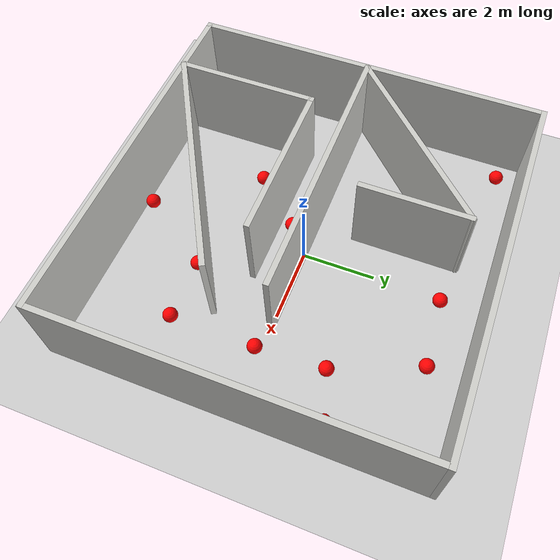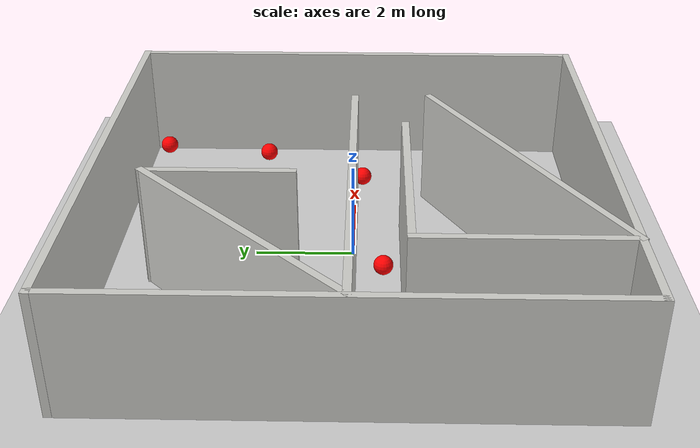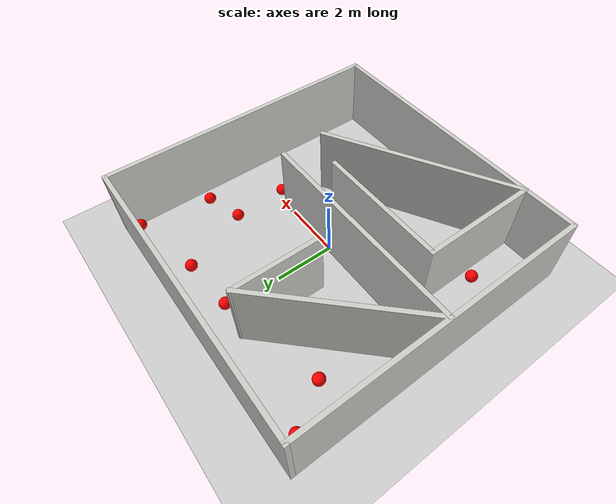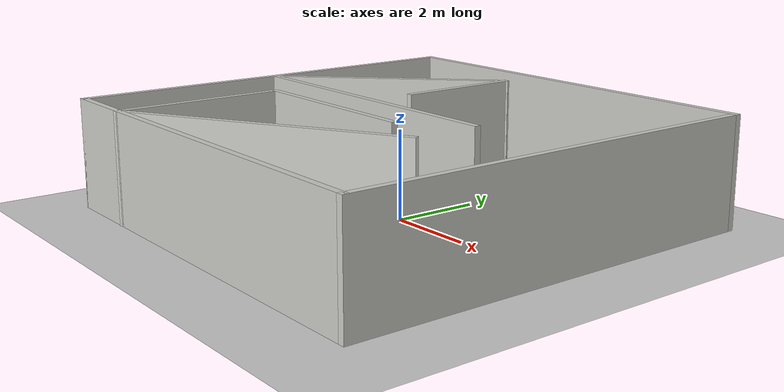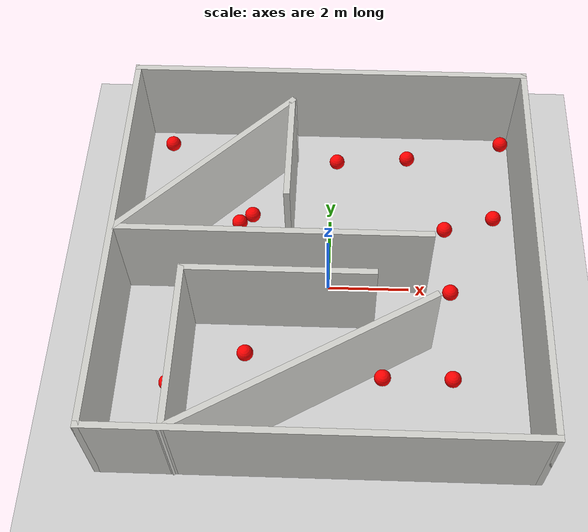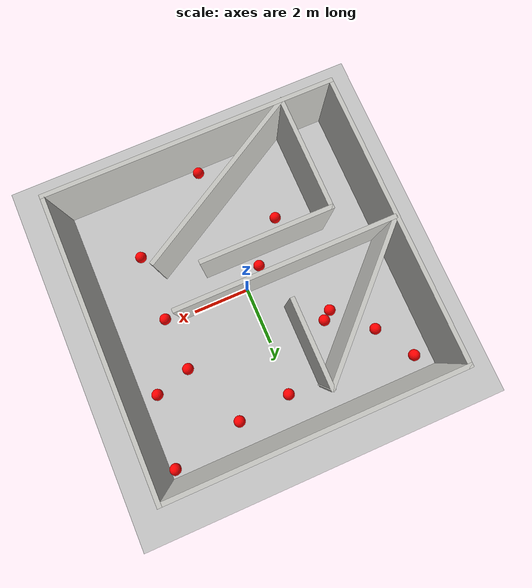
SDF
<sdf version="1.6">
 <world name="default">
  <light name="sun" type="directional">
   <pose>0 0 10 0 -0 0</pose>
   <diffuse>0.8 0.8 0.8 1</diffuse>
   <specular>0.1 0.1 0.1 1</specular>
   <attenuation>
    <range>1000</range>
    <constant>0.9</constant>
    <linear>0.01</linear>
    <quadratic>0.001</quadratic>
   </attenuation>
   <direction>-0.5 0.5 -1</direction>
  </light>
  <model name="ground_plane">
   <static>1</static>
   <link name="link">
    <collision name="collision">
     <geometry><plane><normal>0 0 1</normal><size>100 100</size></plane></geometry>
     <surface><friction><ode><mu>100</mu><mu2>50</mu2></ode></friction></surface>
    </collision>
    <visual name="visual">
     <cast_shadows>0</cast_shadows>
     <geometry><plane><normal>0 0 1</normal><size>100 100</size></plane></geometry>
     <material>
      <script><uri>file://media/materials/scripts/gazebo.material</uri><name>Gazebo/Grey</name></script>
     </material>
    </visual>
   </link>
  </model>
  <gravity>0 0 -9.8</gravity>
  <magnetic_field>6e-06 2.3e-05 -4.2e-05</magnetic_field>
  <atmosphere type="adiabatic"/>
  <physics name="default_physics" default="0" type="ode">
   <max_step_size>0.001</max_step_size>
   <real_time_factor>1</real_time_factor>
   <real_time_update_rate>1000</real_time_update_rate>
  </physics>
  <scene><ambient>0.4 0.4 0.4 1</ambient><background>0.7 0.7 0.7 1</background><shadows>1</shadows></scene>
  <spherical_coordinates>
   <surface_model>EARTH_WGS84</surface_model>
   <latitude_deg>0</latitude_deg>
   <longitude_deg>0</longitude_deg>
   <elevation>0</elevation>
   <heading_deg>0</heading_deg>
  </spherical_coordinates>
  <model name="redball">
   <link name="link">
    <pose>0 0 0.2 0 -0 0</pose>
    <inertial>
     <mass>1</mass>
     <inertia><ixx>0.1</ixx><ixy>0</ixy><ixz>0</ixz><iyy>0.1</iyy><iyz>0</iyz><izz>0.1</izz></inertia>
    </inertial>
    <visual name="visual">
     <geometry><sphere><radius>0.2</radius></sphere></geometry>
     <material>
      <script><name>Gazebo/Grey</name><uri>file://media/materials/scripts/gazebo.material</uri></script>
      <ambient>1 0 0 1</ambient>
      <diffuse>1 0 0 1</diffuse>
      <specular>1 0 0 1</specular>
      <emissive>0 0 0 1</emissive>
      <shader type="vertex"><normal_map>__default__</normal_map></shader>
     </material>
    </visual>
    <collision name="collision">
     <geometry><sphere><radius>0.2</radius></sphere></geometry>
     <surface>
      <friction>
       <ode><mu>1</mu><mu2>1</mu2><fdir1>0 0 0</fdir1><slip1>0</slip1><slip2>0</slip2></ode>
       <torsional>
        <coefficient>1</coefficient>
        <patch_radius>0</patch_radius>
        <surface_radius>0</surface_radius>
        <use_patch_radius>1</use_patch_radius>
        <ode><slip>0</slip></ode>
       </torsional>
      </friction>
      <bounce><restitution_coefficient>0</restitution_coefficient><threshold>1e+06</threshold></bounce>
      <contact>
       <collide_without_contact>0</collide_without_contact>
       <collide_without_contact_bitmask>1</collide_without_contact_bitmask>
       <collide_bitmask>1</collide_bitmask>
       <ode>
        <soft_cfm>0</soft_cfm>
        <soft_erp>0.2</soft_erp>
        <kp>1e+13</kp>
        <kd>1</kd>
        <max_vel>0.01</max_vel>
        <min_depth>0</min_depth>
       </ode>
       <bullet>
        <split_impulse>1</split_impulse>
        <split_impulse_penetration_threshold>-0.01</split_impulse_penetration_threshold>
        <soft_cfm>0</soft_cfm>
        <soft_erp>0.2</soft_erp>
        <kp>1e+13</kp>
        <kd>1</kd>
       </bullet>
      </contact>
     </surface>
    </collision>
   </link>
   <static>0</static>
   <pose>4.553 4.57885 0.000107 1e-06 -0.032773 0</pose>
  </model>
  <model name="redball_0">
   <link name="link">
    <pose>0 0 0.2 0 -0 0</pose>
    <inertial>
     <mass>1</mass>
     <inertia><ixx>0.1</ixx><ixy>0</ixy><ixz>0</ixz><iyy>0.1</iyy><iyz>0</iyz><izz>0.1</izz></inertia>
    </inertial>
    <visual name="visual">
     <geometry><sphere><radius>0.2</radius></sphere></geometry>
     <material>
      <script><name>Gazebo/Grey</name><uri>file://media/materials/scripts/gazebo.material</uri></script>
      <ambient>1 0 0 1</ambient>
      <diffuse>1 0 0 1</diffuse>
      <specular>1 0 0 1</specular>
      <emissive>0 0 0 1</emissive>
      <shader type="vertex"><normal_map>__default__</normal_map></shader>
     </material>
    </visual>
    <collision name="collision">
     <geometry><sphere><radius>0.2</radius></sphere></geometry>
     <surface>
      <friction>
       <ode><mu>1</mu><mu2>1</mu2><fdir1>0 0 0</fdir1><slip1>0</slip1><slip2>0</slip2></ode>
       <torsional>
        <coefficient>1</coefficient>
        <patch_radius>0</patch_radius>
        <surface_radius>0</surface_radius>
        <use_patch_radius>1</use_patch_radius>
        <ode><slip>0</slip></ode>
       </torsional>
      </friction>
      <bounce><restitution_coefficient>0</restitution_coefficient><threshold>1e+06</threshold></bounce>
      <contact>
       <collide_without_contact>0</collide_without_contact>
       <collide_without_contact_bitmask>1</collide_without_contact_bitmask>
       <collide_bitmask>1</collide_bitmask>
       <ode>
        <soft_cfm>0</soft_cfm>
        <soft_erp>0.2</soft_erp>
        <kp>1e+13</kp>
        <kd>1</kd>
        <max_vel>0.01</max_vel>
        <min_depth>0</min_depth>
       </ode>
       <bullet>
        <split_impulse>1</split_impulse>
        <split_impulse_penetration_threshold>-0.01</split_impulse_penetration_threshold>
        <soft_cfm>0</soft_cfm>
        <soft_erp>0.2</soft_erp>
        <kp>1e+13</kp>
        <kd>1</kd>
       </bullet>
      </contact>
     </surface>
    </collision>
   </link>
   <static>0</static>
   <pose>-0.044672 -4.61825 7.4e-05 -0.02714 0 0</pose>
  </model>
  <model name="redball_1">
   <link name="link">
    <pose>0 0 0.2 0 -0 0</pose>
    <inertial>
     <mass>1</mass>
     <inertia><ixx>0.1</ixx><ixy>0</ixy><ixz>0</ixz><iyy>0.1</iyy><iyz>0</iyz><izz>0.1</izz></inertia>
    </inertial>
    <visual name="visual">
     <geometry><sphere><radius>0.2</radius></sphere></geometry>
     <material>
      <script><name>Gazebo/Grey</name><uri>file://media/materials/scripts/gazebo.material</uri></script>
      <ambient>1 0 0 1</ambient>
      <diffuse>1 0 0 1</diffuse>
      <specular>1 0 0 1</specular>
      <emissive>0 0 0 1</emissive>
      <shader type="vertex"><normal_map>__default__</normal_map></shader>
     </material>
    </visual>
    <collision name="collision">
     <geometry><sphere><radius>0.2</radius></sphere></geometry>
     <surface>
      <friction>
       <ode><mu>1</mu><mu2>1</mu2><fdir1>0 0 0</fdir1><slip1>0</slip1><slip2>0</slip2></ode>
       <torsional>
        <coefficient>1</coefficient>
        <patch_radius>0</patch_radius>
        <surface_radius>0</surface_radius>
        <use_patch_radius>1</use_patch_radius>
        <ode><slip>0</slip></ode>
       </torsional>
      </friction>
      <bounce><restitution_coefficient>0</restitution_coefficient><threshold>1e+06</threshold></bounce>
      <contact>
       <collide_without_contact>0</collide_without_contact>
       <collide_without_contact_bitmask>1</collide_without_contact_bitmask>
       <collide_bitmask>1</collide_bitmask>
       <ode>
        <soft_cfm>0</soft_cfm>
        <soft_erp>0.2</soft_erp>
        <kp>1e+13</kp>
        <kd>1</kd>
        <max_vel>0.01</max_vel>
        <min_depth>0</min_depth>
       </ode>
       <bullet>
        <split_impulse>1</split_impulse>
        <split_impulse_penetration_threshold>-0.01</split_impulse_penetration_threshold>
        <soft_cfm>0</soft_cfm>
        <soft_erp>0.2</soft_erp>
        <kp>1e+13</kp>
        <kd>1</kd>
       </bullet>
      </contact>
     </surface>
    </collision>
   </link>
   <static>0</static>
   <pose>-2.01921 2.03663 0 0 -0 0</pose>
  </model>
  <model name="redball_2">
   <link name="link">
    <pose>0 0 0.2 0 -0 0</pose>
    <inertial>
     <mass>1</mass>
     <inertia><ixx>0.1</ixx><ixy>0</ixy><ixz>0</ixz><iyy>0.1</iyy><iyz>0</iyz><izz>0.1</izz></inertia>
    </inertial>
    <visual name="visual">
     <geometry><sphere><radius>0.2</radius></sphere></geometry>
     <material>
      <script><name>Gazebo/Grey</name><uri>file://media/materials/scripts/gazebo.material</uri></script>
      <ambient>1 0 0 1</ambient>
      <diffuse>1 0 0 1</diffuse>
      <specular>1 0 0 1</specular>
      <emissive>0 0 0 1</emissive>
      <shader type="vertex"><normal_map>__default__</normal_map></shader>
     </material>
    </visual>
    <collision name="collision">
     <geometry><sphere><radius>0.2</radius></sphere></geometry>
     <surface>
      <friction>
       <ode><mu>1</mu><mu2>1</mu2><fdir1>0 0 0</fdir1><slip1>0</slip1><slip2>0</slip2></ode>
       <torsional>
        <coefficient>1</coefficient>
        <patch_radius>0</patch_radius>
        <surface_radius>0</surface_radius>
        <use_patch_radius>1</use_patch_radius>
        <ode><slip>0</slip></ode>
       </torsional>
      </friction>
      <bounce><restitution_coefficient>0</restitution_coefficient><threshold>1e+06</threshold></bounce>
      <contact>
       <collide_without_contact>0</collide_without_contact>
       <collide_without_contact_bitmask>1</collide_without_contact_bitmask>
       <collide_bitmask>1</collide_bitmask>
       <ode>
        <soft_cfm>0</soft_cfm>
        <soft_erp>0.2</soft_erp>
        <kp>1e+13</kp>
        <kd>1</kd>
        <max_vel>0.01</max_vel>
        <min_depth>0</min_depth>
       </ode>
       <bullet>
        <split_impulse>1</split_impulse>
        <split_impulse_penetration_threshold>-0.01</split_impulse_penetration_threshold>
        <soft_cfm>0</soft_cfm>
        <soft_erp>0.2</soft_erp>
        <kp>1e+13</kp>
        <kd>1</kd>
       </bullet>
      </contact>
     </surface>
    </collision>
   </link>
   <static>0</static>
   <pose>-2.33531 1.78833 0 0 -0 0</pose>
  </model>
  <model name="redball_3">
   <link name="link">
    <pose>0 0 0.2 0 -0 0</pose>
    <inertial>
     <mass>1</mass>
     <inertia><ixx>0.1</ixx><ixy>0</ixy><ixz>0</ixz><iyy>0.1</iyy><iyz>0</iyz><izz>0.1</izz></inertia>
    </inertial>
    <visual name="visual">
     <geometry><sphere><radius>0.2</radius></sphere></geometry>
     <material>
      <script><name>Gazebo/Grey</name><uri>file://media/materials/scripts/gazebo.material</uri></script>
      <ambient>1 0 0 1</ambient>
      <diffuse>1 0 0 1</diffuse>
      <specular>1 0 0 1</specular>
      <emissive>0 0 0 1</emissive>
      <shader type="vertex"><normal_map>__default__</normal_map></shader>
     </material>
    </visual>
    <collision name="collision">
     <geometry><sphere><radius>0.2</radius></sphere></geometry>
     <surface>
      <friction>
       <ode><mu>1</mu><mu2>1</mu2><fdir1>0 0 0</fdir1><slip1>0</slip1><slip2>0</slip2></ode>
       <torsional>
        <coefficient>1</coefficient>
        <patch_radius>0</patch_radius>
        <surface_radius>0</surface_radius>
        <use_patch_radius>1</use_patch_radius>
        <ode><slip>0</slip></ode>
       </torsional>
      </friction>
      <bounce><restitution_coefficient>0</restitution_coefficient><threshold>1e+06</threshold></bounce>
      <contact>
       <collide_without_contact>0</collide_without_contact>
       <collide_without_contact_bitmask>1</collide_without_contact_bitmask>
       <collide_bitmask>1</collide_bitmask>
       <ode>
        <soft_cfm>0</soft_cfm>
        <soft_erp>0.2</soft_erp>
        <kp>1e+13</kp>
        <kd>1</kd>
        <max_vel>0.01</max_vel>
        <min_depth>0</min_depth>
       </ode>
       <bullet>
        <split_impulse>1</split_impulse>
        <split_impulse_penetration_threshold>-0.01</split_impulse_penetration_threshold>
        <soft_cfm>0</soft_cfm>
        <soft_erp>0.2</soft_erp>
        <kp>1e+13</kp>
        <kd>1</kd>
       </bullet>
      </contact>
     </surface>
    </collision>
   </link>
   <static>0</static>
   <pose>-1.92733 -1.98789 0 0 -0 0</pose>
  </model>
  <model name="4wall">
   <pose>-0.096996 0.031753 0 0 -0 0</pose>
   <link name="Wall_34">
    <collision name="Wall_34_Collision">
     <geometry><box><size>10 0.15 2.5</size></box></geometry>
     <pose>0 0 1.25 0 -0 0</pose>
    </collision>
    <visual name="Wall_34_Visual">
     <pose>0 0 1.25 0 -0 0</pose>
     <geometry><box><size>10 0.15 2.5</size></box></geometry>
     <material>
      <script><uri>file://media/materials/scripts/gazebo.material</uri><name>Gazebo/CeilingTiled</name></script>
      <ambient>1 1 1 1</ambient>
     </material>
     <meta><layer>0</layer></meta>
    </visual>
    <pose>0 4.925 0 0 -0 3.14159</pose>
   </link>
   <link name="Wall_36">
    <collision name="Wall_36_Collision">
     <geometry><box><size>10 0.15 2.5</size></box></geometry>
     <pose>0 0 1.25 0 -0 0</pose>
    </collision>
    <visual name="Wall_36_Visual">
     <pose>0 0 1.25 0 -0 0</pose>
     <geometry><box><size>10 0.15 2.5</size></box></geometry>
     <material>
      <script><uri>file://media/materials/scripts/gazebo.material</uri><name>Gazebo/CeilingTiled</name></script>
      <ambient>1 1 1 1</ambient>
     </material>
     <meta><layer>0</layer></meta>
    </visual>
    <pose>-4.925 0 0 0 0 -1.5708</pose>
   </link>
   <link name="Wall_37">
    <collision name="Wall_37_Collision">
     <geometry><box><size>10 0.15 2.5</size></box></geometry>
     <pose>0 0 1.25 0 -0 0</pose>
    </collision>
    <visual name="Wall_37_Visual">
     <pose>0 0 1.25 0 -0 0</pose>
     <geometry><box><size>10 0.15 2.5</size></box></geometry>
     <material>
      <script><uri>file://media/materials/scripts/gazebo.material</uri><name>Gazebo/CeilingTiled</name></script>
      <ambient>1 1 1 1</ambient>
     </material>
     <meta><layer>0</layer></meta>
    </visual>
    <pose>0 -4.925 0 0 -0 0</pose>
   </link>
   <link name="Wall_38">
    <collision name="Wall_38_Collision">
     <geometry><box><size>10 0.15 2.5</size></box></geometry>
     <pose>0 0 1.25 0 -0 0</pose>
    </collision>
    <visual name="Wall_38_Visual">
     <pose>0 0 1.25 0 -0 0</pose>
     <geometry><box><size>10 0.15 2.5</size></box></geometry>
     <material>
      <script><uri>file://media/materials/scripts/gazebo.material</uri><name>Gazebo/CeilingTiled</name></script>
      <ambient>1 1 1 1</ambient>
     </material>
     <meta><layer>0</layer></meta>
    </visual>
    <pose>4.925 0 0 0 -0 1.5708</pose>
   </link>
   <static>1</static>
  </model>
  <model name="redball_2_clone">
   <link name="link">
    <pose>0 0 0.2 0 -0 0</pose>
    <inertial>
     <mass>1</mass>
     <inertia><ixx>0.1</ixx><ixy>0</ixy><ixz>0</ixz><iyy>0.1</iyy><iyz>0</iyz><izz>0.1</izz></inertia>
    </inertial>
    <visual name="visual">
     <geometry><sphere><radius>0.2</radius></sphere></geometry>
     <material>
      <script><name>Gazebo/Grey</name><uri>file://media/materials/scripts/gazebo.material</uri></script>
      <ambient>1 0 0 1</ambient>
      <diffuse>1 0 0 1</diffuse>
      <specular>1 0 0 1</specular>
      <emissive>0 0 0 1</emissive>
      <shader type="vertex"><normal_map>__default__</normal_map></shader>
     </material>
    </visual>
    <collision name="collision">
     <geometry><sphere><radius>0.2</radius></sphere></geometry>
     <surface>
      <friction>
       <ode><mu>1</mu><mu2>1</mu2><fdir1>0 0 0</fdir1><slip1>0</slip1><slip2>0</slip2></ode>
       <torsional>
        <coefficient>1</coefficient>
        <patch_radius>0</patch_radius>
        <surface_radius>0</surface_radius>
        <use_patch_radius>1</use_patch_radius>
        <ode><slip>0</slip></ode>
       </torsional>
      </friction>
      <bounce><restitution_coefficient>0</restitution_coefficient><threshold>1e+06</threshold></bounce>
      <contact>
       <collide_without_contact>0</collide_without_contact>
       <collide_without_contact_bitmask>1</collide_without_contact_bitmask>
       <collide_bitmask>1</collide_bitmask>
       <ode>
        <soft_cfm>0</soft_cfm>
        <soft_erp>0.2</soft_erp>
        <kp>1e+13</kp>
        <kd>1</kd>
        <max_vel>0.01</max_vel>
        <min_depth>0</min_depth>
       </ode>
       <bullet>
        <split_impulse>1</split_impulse>
        <split_impulse_penetration_threshold>-0.01</split_impulse_penetration_threshold>
        <soft_cfm>0</soft_cfm>
        <soft_erp>0.2</soft_erp>
        <kp>1e+13</kp>
        <kd>1</kd>
       </bullet>
      </contact>
     </surface>
    </collision>
   </link>
   <static>0</static>
   <pose>1.34353 -2.53732 6.8e-05 0.022441 0.013145 3.8e-05</pose>
  </model>
  <model name="redball_2_clone_0">
   <link name="link">
    <pose>0 0 0.2 0 -0 0</pose>
    <inertial>
     <mass>1</mass>
     <inertia><ixx>0.1</ixx><ixy>0</ixy><ixz>0</ixz><iyy>0.1</iyy><iyz>0</iyz><izz>0.1</izz></inertia>
    </inertial>
    <visual name="visual">
     <geometry><sphere><radius>0.2</radius></sphere></geometry>
     <material>
      <script><name>Gazebo/Grey</name><uri>file://media/materials/scripts/gazebo.material</uri></script>
      <ambient>1 0 0 1</ambient>
      <diffuse>1 0 0 1</diffuse>
      <specular>1 0 0 1</specular>
      <emissive>0 0 0 1</emissive>
      <shader type="vertex"><normal_map>__default__</normal_map></shader>
     </material>
    </visual>
    <collision name="collision">
     <geometry><sphere><radius>0.2</radius></sphere></geometry>
     <surface>
      <friction>
       <ode><mu>1</mu><mu2>1</mu2><fdir1>0 0 0</fdir1><slip1>0</slip1><slip2>0</slip2></ode>
       <torsional>
        <coefficient>1</coefficient>
        <patch_radius>0</patch_radius>
        <surface_radius>0</surface_radius>
        <use_patch_radius>1</use_patch_radius>
        <ode><slip>0</slip></ode>
       </torsional>
      </friction>
      <bounce><restitution_coefficient>0</restitution_coefficient><threshold>1e+06</threshold></bounce>
      <contact>
       <collide_without_contact>0</collide_without_contact>
       <collide_without_contact_bitmask>1</collide_without_contact_bitmask>
       <collide_bitmask>1</collide_bitmask>
       <ode>
        <soft_cfm>0</soft_cfm>
        <soft_erp>0.2</soft_erp>
        <kp>1e+13</kp>
        <kd>1</kd>
        <max_vel>0.01</max_vel>
        <min_depth>0</min_depth>
       </ode>
       <bullet>
        <split_impulse>1</split_impulse>
        <split_impulse_penetration_threshold>-0.01</split_impulse_penetration_threshold>
        <soft_cfm>0</soft_cfm>
        <soft_erp>0.2</soft_erp>
        <kp>1e+13</kp>
        <kd>1</kd>
       </bullet>
      </contact>
     </surface>
    </collision>
   </link>
   <static>0</static>
   <pose>3.02203 -0.166377 0 0 -0 0</pose>
  </model>
  <model name="redball_2_clone_1">
   <link name="link">
    <pose>0 0 0.2 0 -0 0</pose>
    <inertial>
     <mass>1</mass>
     <inertia><ixx>0.1</ixx><ixy>0</ixy><ixz>0</ixz><iyy>0.1</iyy><iyz>0</iyz><izz>0.1</izz></inertia>
    </inertial>
    <visual name="visual">
     <geometry><sphere><radius>0.2</radius></sphere></geometry>
     <material>
      <script><name>Gazebo/Grey</name><uri>file://media/materials/scripts/gazebo.material</uri></script>
      <ambient>1 0 0 1</ambient>
      <diffuse>1 0 0 1</diffuse>
      <specular>1 0 0 1</specular>
      <emissive>0 0 0 1</emissive>
      <shader type="vertex"><normal_map>__default__</normal_map></shader>
     </material>
    </visual>
    <collision name="collision">
     <geometry><sphere><radius>0.2</radius></sphere></geometry>
     <surface>
      <friction>
       <ode><mu>1</mu><mu2>1</mu2><fdir1>0 0 0</fdir1><slip1>0</slip1><slip2>0</slip2></ode>
       <torsional>
        <coefficient>1</coefficient>
        <patch_radius>0</patch_radius>
        <surface_radius>0</surface_radius>
        <use_patch_radius>1</use_patch_radius>
        <ode><slip>0</slip></ode>
       </torsional>
      </friction>
      <bounce><restitution_coefficient>0</restitution_coefficient><threshold>1e+06</threshold></bounce>
      <contact>
       <collide_without_contact>0</collide_without_contact>
       <collide_without_contact_bitmask>1</collide_without_contact_bitmask>
       <collide_bitmask>1</collide_bitmask>
       <ode>
        <soft_cfm>0</soft_cfm>
        <soft_erp>0.2</soft_erp>
        <kp>1e+13</kp>
        <kd>1</kd>
        <max_vel>0.01</max_vel>
        <min_depth>0</min_depth>
       </ode>
       <bullet>
        <split_impulse>1</split_impulse>
        <split_impulse_penetration_threshold>-0.01</split_impulse_penetration_threshold>
        <soft_cfm>0</soft_cfm>
        <soft_erp>0.2</soft_erp>
        <kp>1e+13</kp>
        <kd>1</kd>
       </bullet>
      </contact>
     </surface>
    </collision>
   </link>
   <static>0</static>
   <pose>3 -2.53113 0 0 -0 0</pose>
  </model>
  <model name="redball_2_clone_2">
   <link name="link">
    <pose>0 0 0.2 0 -0 0</pose>
    <inertial>
     <mass>1</mass>
     <inertia><ixx>0.1</ixx><ixy>0</ixy><ixz>0</ixz><iyy>0.1</iyy><iyz>0</iyz><izz>0.1</izz></inertia>
    </inertial>
    <visual name="visual">
     <geometry><sphere><radius>0.2</radius></sphere></geometry>
     <material>
      <script><name>Gazebo/Grey</name><uri>file://media/materials/scripts/gazebo.material</uri></script>
      <ambient>1 0 0 1</ambient>
      <diffuse>1 0 0 1</diffuse>
      <specular>1 0 0 1</specular>
      <emissive>0 0 0 1</emissive>
      <shader type="vertex"><normal_map>__default__</normal_map></shader>
     </material>
    </visual>
    <collision name="collision">
     <geometry><sphere><radius>0.2</radius></sphere></geometry>
     <surface>
      <friction>
       <ode><mu>1</mu><mu2>1</mu2><fdir1>0 0 0</fdir1><slip1>0</slip1><slip2>0</slip2></ode>
       <torsional>
        <coefficient>1</coefficient>
        <patch_radius>0</patch_radius>
        <surface_radius>0</surface_radius>
        <use_patch_radius>1</use_patch_radius>
        <ode><slip>0</slip></ode>
       </torsional>
      </friction>
      <bounce><restitution_coefficient>0</restitution_coefficient><threshold>1e+06</threshold></bounce>
      <contact>
       <collide_without_contact>0</collide_without_contact>
       <collide_without_contact_bitmask>1</collide_without_contact_bitmask>
       <collide_bitmask>1</collide_bitmask>
       <ode>
        <soft_cfm>0</soft_cfm>
        <soft_erp>0.2</soft_erp>
        <kp>1e+13</kp>
        <kd>1</kd>
        <max_vel>0.01</max_vel>
        <min_depth>0</min_depth>
       </ode>
       <bullet>
        <split_impulse>1</split_impulse>
        <split_impulse_penetration_threshold>-0.01</split_impulse_penetration_threshold>
        <soft_cfm>0</soft_cfm>
        <soft_erp>0.2</soft_erp>
        <kp>1e+13</kp>
        <kd>1</kd>
       </bullet>
      </contact>
     </surface>
    </collision>
   </link>
   <static>0</static>
   <pose>4.20871 2.10315 0 0 -0 0</pose>
  </model>
  <model name="redball_2_clone_3">
   <link name="link">
    <pose>0 0 0.2 0 -0 0</pose>
    <inertial>
     <mass>1</mass>
     <inertia><ixx>0.1</ixx><ixy>0</ixy><ixz>0</ixz><iyy>0.1</iyy><iyz>0</iyz><izz>0.1</izz></inertia>
    </inertial>
    <visual name="visual">
     <geometry><sphere><radius>0.2</radius></sphere></geometry>
     <material>
      <script><name>Gazebo/Grey</name><uri>file://media/materials/scripts/gazebo.material</uri></script>
      <ambient>1 0 0 1</ambient>
      <diffuse>1 0 0 1</diffuse>
      <specular>1 0 0 1</specular>
      <emissive>0 0 0 1</emissive>
      <shader type="vertex"><normal_map>__default__</normal_map></shader>
     </material>
    </visual>
    <collision name="collision">
     <geometry><sphere><radius>0.2</radius></sphere></geometry>
     <surface>
      <friction>
       <ode><mu>1</mu><mu2>1</mu2><fdir1>0 0 0</fdir1><slip1>0</slip1><slip2>0</slip2></ode>
       <torsional>
        <coefficient>1</coefficient>
        <patch_radius>0</patch_radius>
        <surface_radius>0</surface_radius>
        <use_patch_radius>1</use_patch_radius>
        <ode><slip>0</slip></ode>
       </torsional>
      </friction>
      <bounce><restitution_coefficient>0</restitution_coefficient><threshold>1e+06</threshold></bounce>
      <contact>
       <collide_without_contact>0</collide_without_contact>
       <collide_without_contact_bitmask>1</collide_without_contact_bitmask>
       <collide_bitmask>1</collide_bitmask>
       <ode>
        <soft_cfm>0</soft_cfm>
        <soft_erp>0.2</soft_erp>
        <kp>1e+13</kp>
        <kd>1</kd>
        <max_vel>0.01</max_vel>
        <min_depth>0</min_depth>
       </ode>
       <bullet>
        <split_impulse>1</split_impulse>
        <split_impulse_penetration_threshold>-0.01</split_impulse_penetration_threshold>
        <soft_cfm>0</soft_cfm>
        <soft_erp>0.2</soft_erp>
        <kp>1e+13</kp>
        <kd>1</kd>
       </bullet>
      </contact>
     </surface>
    </collision>
   </link>
   <static>0</static>
   <pose>2 4 0 0 -0 0</pose>
  </model>
  <model name="redball_2_clone_4">
   <link name="link">
    <pose>0 0 0.2 0 -0 0</pose>
    <inertial>
     <mass>1</mass>
     <inertia><ixx>0.1</ixx><ixy>0</ixy><ixz>0</ixz><iyy>0.1</iyy><iyz>0</iyz><izz>0.1</izz></inertia>
    </inertial>
    <visual name="visual">
     <geometry><sphere><radius>0.2</radius></sphere></geometry>
     <material>
      <script><name>Gazebo/Grey</name><uri>file://media/materials/scripts/gazebo.material</uri></script>
      <ambient>1 0 0 1</ambient>
      <diffuse>1 0 0 1</diffuse>
      <specular>1 0 0 1</specular>
      <emissive>0 0 0 1</emissive>
      <shader type="vertex"><normal_map>__default__</normal_map></shader>
     </material>
    </visual>
    <collision name="collision">
     <geometry><sphere><radius>0.2</radius></sphere></geometry>
     <surface>
      <friction>
       <ode><mu>1</mu><mu2>1</mu2><fdir1>0 0 0</fdir1><slip1>0</slip1><slip2>0</slip2></ode>
       <torsional>
        <coefficient>1</coefficient>
        <patch_radius>0</patch_radius>
        <surface_radius>0</surface_radius>
        <use_patch_radius>1</use_patch_radius>
        <ode><slip>0</slip></ode>
       </torsional>
      </friction>
      <bounce><restitution_coefficient>0</restitution_coefficient><threshold>1e+06</threshold></bounce>
      <contact>
       <collide_without_contact>0</collide_without_contact>
       <collide_without_contact_bitmask>1</collide_without_contact_bitmask>
       <collide_bitmask>1</collide_bitmask>
       <ode>
        <soft_cfm>0</soft_cfm>
        <soft_erp>0.2</soft_erp>
        <kp>1e+13</kp>
        <kd>1</kd>
        <max_vel>0.01</max_vel>
        <min_depth>0</min_depth>
       </ode>
       <bullet>
        <split_impulse>1</split_impulse>
        <split_impulse_penetration_threshold>-0.01</split_impulse_penetration_threshold>
        <soft_cfm>0</soft_cfm>
        <soft_erp>0.2</soft_erp>
        <kp>1e+13</kp>
        <kd>1</kd>
       </bullet>
      </contact>
     </surface>
    </collision>
   </link>
   <static>0</static>
   <pose>-4.34673 4.33403 0 0 -0 0</pose>
  </model>
  <model name="redball_2_clone_5">
   <link name="link">
    <pose>0 0 0.2 0 -0 0</pose>
    <inertial>
     <mass>1</mass>
     <inertia><ixx>0.1</ixx><ixy>0</ixy><ixz>0</ixz><iyy>0.1</iyy><iyz>0</iyz><izz>0.1</izz></inertia>
    </inertial>
    <visual name="visual">
     <geometry><sphere><radius>0.2</radius></sphere></geometry>
     <material>
      <script><name>Gazebo/Grey</name><uri>file://media/materials/scripts/gazebo.material</uri></script>
      <ambient>1 0 0 1</ambient>
      <diffuse>1 0 0 1</diffuse>
      <specular>1 0 0 1</specular>
      <emissive>0 0 0 1</emissive>
      <shader type="vertex"><normal_map>__default__</normal_map></shader>
     </material>
    </visual>
    <collision name="collision">
     <geometry><sphere><radius>0.2</radius></sphere></geometry>
     <surface>
      <friction>
       <ode><mu>1</mu><mu2>1</mu2><fdir1>0 0 0</fdir1><slip1>0</slip1><slip2>0</slip2></ode>
       <torsional>
        <coefficient>1</coefficient>
        <patch_radius>0</patch_radius>
        <surface_radius>0</surface_radius>
        <use_patch_radius>1</use_patch_radius>
        <ode><slip>0</slip></ode>
       </torsional>
      </friction>
      <bounce><restitution_coefficient>0</restitution_coefficient><threshold>1e+06</threshold></bounce>
      <contact>
       <collide_without_contact>0</collide_without_contact>
       <collide_without_contact_bitmask>1</collide_without_contact_bitmask>
       <collide_bitmask>1</collide_bitmask>
       <ode>
        <soft_cfm>0</soft_cfm>
        <soft_erp>0.2</soft_erp>
        <kp>1e+13</kp>
        <kd>1</kd>
        <max_vel>0.01</max_vel>
        <min_depth>0</min_depth>
       </ode>
       <bullet>
        <split_impulse>1</split_impulse>
        <split_impulse_penetration_threshold>-0.01</split_impulse_penetration_threshold>
        <soft_cfm>0</soft_cfm>
        <soft_erp>0.2</soft_erp>
        <kp>1e+13</kp>
        <kd>1</kd>
       </bullet>
      </contact>
     </surface>
    </collision>
   </link>
   <static>0</static>
   <pose>-3.68777 -2.81908 0 0 -0 0</pose>
  </model>
  <model name="redball_2_clone_6">
   <link name="link">
    <pose>0 0 0.2 0 -0 0</pose>
    <inertial>
     <mass>1</mass>
     <inertia><ixx>0.1</ixx><ixy>0</ixy><ixz>0</ixz><iyy>0.1</iyy><iyz>0</iyz><izz>0.1</izz></inertia>
    </inertial>
    <visual name="visual">
     <geometry><sphere><radius>0.2</radius></sphere></geometry>
     <material>
      <script><name>Gazebo/Grey</name><uri>file://media/materials/scripts/gazebo.material</uri></script>
      <ambient>1 0 0 1</ambient>
      <diffuse>1 0 0 1</diffuse>
      <specular>1 0 0 1</specular>
      <emissive>0 0 0 1</emissive>
      <shader type="vertex"><normal_map>__default__</normal_map></shader>
     </material>
    </visual>
    <collision name="collision">
     <geometry><sphere><radius>0.2</radius></sphere></geometry>
     <surface>
      <friction>
       <ode><mu>1</mu><mu2>1</mu2><fdir1>0 0 0</fdir1><slip1>0</slip1><slip2>0</slip2></ode>
       <torsional>
        <coefficient>1</coefficient>
        <patch_radius>0</patch_radius>
        <surface_radius>0</surface_radius>
        <use_patch_radius>1</use_patch_radius>
        <ode><slip>0</slip></ode>
       </torsional>
      </friction>
      <bounce><restitution_coefficient>0</restitution_coefficient><threshold>1e+06</threshold></bounce>
      <contact>
       <collide_without_contact>0</collide_without_contact>
       <collide_without_contact_bitmask>1</collide_without_contact_bitmask>
       <collide_bitmask>1</collide_bitmask>
       <ode>
        <soft_cfm>0</soft_cfm>
        <soft_erp>0.2</soft_erp>
        <kp>1e+13</kp>
        <kd>1</kd>
        <max_vel>0.01</max_vel>
        <min_depth>0</min_depth>
       </ode>
       <bullet>
        <split_impulse>1</split_impulse>
        <split_impulse_penetration_threshold>-0.01</split_impulse_penetration_threshold>
        <soft_cfm>0</soft_cfm>
        <soft_erp>0.2</soft_erp>
        <kp>1e+13</kp>
        <kd>1</kd>
       </bullet>
      </contact>
     </surface>
    </collision>
   </link>
   <static>0</static>
   <pose>-0.707132 -0.6194 0 0 -0 0</pose>
  </model>
  <model name="redball_2_clone_7">
   <link name="link">
    <pose>0 0 0.2 0 -0 0</pose>
    <inertial>
     <mass>1</mass>
     <inertia><ixx>0.1</ixx><ixy>0</ixy><ixz>0</ixz><iyy>0.1</iyy><iyz>0</iyz><izz>0.1</izz></inertia>
    </inertial>
    <visual name="visual">
     <geometry><sphere><radius>0.2</radius></sphere></geometry>
     <material>
      <script><name>Gazebo/Grey</name><uri>file://media/materials/scripts/gazebo.material</uri></script>
      <ambient>1 0 0 1</ambient>
      <diffuse>1 0 0 1</diffuse>
      <specular>1 0 0 1</specular>
      <emissive>0 0 0 1</emissive>
      <shader type="vertex"><normal_map>__default__</normal_map></shader>
     </material>
    </visual>
    <collision name="collision">
     <geometry><sphere><radius>0.2</radius></sphere></geometry>
     <surface>
      <friction>
       <ode><mu>1</mu><mu2>1</mu2><fdir1>0 0 0</fdir1><slip1>0</slip1><slip2>0</slip2></ode>
       <torsional>
        <coefficient>1</coefficient>
        <patch_radius>0</patch_radius>
        <surface_radius>0</surface_radius>
        <use_patch_radius>1</use_patch_radius>
        <ode><slip>0</slip></ode>
       </torsional>
      </friction>
      <bounce><restitution_coefficient>0</restitution_coefficient><threshold>1e+06</threshold></bounce>
      <contact>
       <collide_without_contact>0</collide_without_contact>
       <collide_without_contact_bitmask>1</collide_without_contact_bitmask>
       <collide_bitmask>1</collide_bitmask>
       <ode>
        <soft_cfm>0</soft_cfm>
        <soft_erp>0.2</soft_erp>
        <kp>1e+13</kp>
        <kd>1</kd>
        <max_vel>0.01</max_vel>
        <min_depth>0</min_depth>
       </ode>
       <bullet>
        <split_impulse>1</split_impulse>
        <split_impulse_penetration_threshold>-0.01</split_impulse_penetration_threshold>
        <soft_cfm>0</soft_cfm>
        <soft_erp>0.2</soft_erp>
        <kp>1e+13</kp>
        <kd>1</kd>
       </bullet>
      </contact>
     </surface>
    </collision>
   </link>
   <static>0</static>
   <pose>2.93659 1.71357 0 0 -0 0</pose>
  </model>
  <model name="redball_2_clone_8">
   <link name="link">
    <pose>0 0 0.2 0 -0 0</pose>
    <inertial>
     <mass>1</mass>
     <inertia><ixx>0.1</ixx><ixy>0</ixy><ixz>0</ixz><iyy>0.1</iyy><iyz>0</iyz><izz>0.1</izz></inertia>
    </inertial>
    <visual name="visual">
     <geometry><sphere><radius>0.2</radius></sphere></geometry>
     <material>
      <script><name>Gazebo/Grey</name><uri>file://media/materials/scripts/gazebo.material</uri></script>
      <ambient>1 0 0 1</ambient>
      <diffuse>1 0 0 1</diffuse>
      <specular>1 0 0 1</specular>
      <emissive>0 0 0 1</emissive>
      <shader type="vertex"><normal_map>__default__</normal_map></shader>
     </material>
    </visual>
    <collision name="collision">
     <geometry><sphere><radius>0.2</radius></sphere></geometry>
     <surface>
      <friction>
       <ode><mu>1</mu><mu2>1</mu2><fdir1>0 0 0</fdir1><slip1>0</slip1><slip2>0</slip2></ode>
       <torsional>
        <coefficient>1</coefficient>
        <patch_radius>0</patch_radius>
        <surface_radius>0</surface_radius>
        <use_patch_radius>1</use_patch_radius>
        <ode><slip>0</slip></ode>
       </torsional>
      </friction>
      <bounce><restitution_coefficient>0</restitution_coefficient><threshold>1e+06</threshold></bounce>
      <contact>
       <collide_without_contact>0</collide_without_contact>
       <collide_without_contact_bitmask>1</collide_without_contact_bitmask>
       <collide_bitmask>1</collide_bitmask>
       <ode>
        <soft_cfm>0</soft_cfm>
        <soft_erp>0.2</soft_erp>
        <kp>1e+13</kp>
        <kd>1</kd>
        <max_vel>0.01</max_vel>
        <min_depth>0</min_depth>
       </ode>
       <bullet>
        <split_impulse>1</split_impulse>
        <split_impulse_penetration_threshold>-0.01</split_impulse_penetration_threshold>
        <soft_cfm>0</soft_cfm>
        <soft_erp>0.2</soft_erp>
        <kp>1e+13</kp>
        <kd>1</kd>
       </bullet>
      </contact>
     </surface>
    </collision>
   </link>
   <static>0</static>
   <pose>0.125761 3.83954 0 0 -0 0</pose>
  </model>
  <model name="redball_2_clone_9">
   <link name="link">
    <pose>0 0 0.2 0 -0 0</pose>
    <inertial>
     <mass>1</mass>
     <inertia><ixx>0.1</ixx><ixy>0</ixy><ixz>0</ixz><iyy>0.1</iyy><iyz>0</iyz><izz>0.1</izz></inertia>
    </inertial>
    <visual name="visual">
     <geometry><sphere><radius>0.2</radius></sphere></geometry>
     <material>
      <script><name>Gazebo/Grey</name><uri>file://media/materials/scripts/gazebo.material</uri></script>
      <ambient>1 0 0 1</ambient>
      <diffuse>1 0 0 1</diffuse>
      <specular>1 0 0 1</specular>
      <emissive>0 0 0 1</emissive>
      <shader type="vertex"><normal_map>__default__</normal_map></shader>
     </material>
    </visual>
    <collision name="collision">
     <geometry><sphere><radius>0.2</radius></sphere></geometry>
     <surface>
      <friction>
       <ode><mu>1</mu><mu2>1</mu2><fdir1>0 0 0</fdir1><slip1>0</slip1><slip2>0</slip2></ode>
       <torsional>
        <coefficient>1</coefficient>
        <patch_radius>0</patch_radius>
        <surface_radius>0</surface_radius>
        <use_patch_radius>1</use_patch_radius>
        <ode><slip>0</slip></ode>
       </torsional>
      </friction>
      <bounce><restitution_coefficient>0</restitution_coefficient><threshold>1e+06</threshold></bounce>
      <contact>
       <collide_without_contact>0</collide_without_contact>
       <collide_without_contact_bitmask>1</collide_without_contact_bitmask>
       <collide_bitmask>1</collide_bitmask>
       <ode>
        <soft_cfm>0</soft_cfm>
        <soft_erp>0.2</soft_erp>
        <kp>1e+13</kp>
        <kd>1</kd>
        <max_vel>0.01</max_vel>
        <min_depth>0</min_depth>
       </ode>
       <bullet>
        <split_impulse>1</split_impulse>
        <split_impulse_penetration_threshold>-0.01</split_impulse_penetration_threshold>
        <soft_cfm>0</soft_cfm>
        <soft_erp>0.2</soft_erp>
        <kp>1e+13</kp>
        <kd>1</kd>
       </bullet>
      </contact>
     </surface>
    </collision>
   </link>
   <static>0</static>
   <pose>-3.51134 3 0 0 -0 0</pose>
  </model>
  <model name="Untitled2">
   <pose>-1.27943 -0.462061 0 0 -0 0</pose>
   <link name="Wall_58">
    <collision name="Wall_58_Collision">
     <geometry><box><size>7.5 0.15 2.5</size></box></geometry>
     <pose>0 0 1.25 0 -0 0</pose>
    </collision>
    <visual name="Wall_58_Visual">
     <pose>0 0 1.25 0 -0 0</pose>
     <geometry><box><size>7.5 0.15 2.5</size></box></geometry>
     <material>
      <script><uri>file://media/materials/scripts/gazebo.material</uri><name>Gazebo/CeilingTiled</name></script>
      <ambient>1 1 1 1</ambient>
     </material>
     <meta><layer>0</layer></meta>
    </visual>
    <pose>-0.028958 0.468156 0 0 -0 3.14159</pose>
   </link>
   <link name="Wall_59">
    <collision name="Wall_59_Collision">
     <geometry><box><size>5.75 0.15 2.5</size></box></geometry>
     <pose>0 0 1.25 0 -0 0</pose>
    </collision>
    <visual name="Wall_59_Visual">
     <pose>0 0 1.25 0 -0 0</pose>
     <geometry><box><size>5.75 0.15 2.5</size></box></geometry>
     <material>
      <script><uri>file://media/materials/scripts/gazebo.material</uri><name>Gazebo/CeilingTiled</name></script>
      <ambient>1 1 1 1</ambient>
     </material>
     <meta><layer>0</layer></meta>
    </visual>
    <pose>-1.72406 2.44806 0 0 -0 0.785398</pose>
   </link>
   <link name="Wall_60">
    <collision name="Wall_60_Collision">
     <geometry><box><size>3 0.15 2.5</size></box></geometry>
     <pose>0 0 1.25 0 -0 0</pose>
    </collision>
    <visual name="Wall_60_Visual">
     <pose>0 0 1.25 0 -0 0</pose>
     <geometry><box><size>3 0.15 2.5</size></box></geometry>
     <material>
      <script><uri>file://media/materials/scripts/gazebo.material</uri><name>Gazebo/CeilingTiled</name></script>
      <ambient>1 1 1 1</ambient>
     </material>
     <meta><layer>0</layer></meta>
    </visual>
    <pose>0.25584 3.00295 0 0 0 -1.5708</pose>
   </link>
   <link name="Wall_63">
    <collision name="Wall_63_Collision">
     <geometry><box><size>6.75 0.15 2.5</size></box></geometry>
     <pose>0 0 1.25 0 -0 0</pose>
    </collision>
    <visual name="Wall_63_Visual">
     <pose>0 0 1.25 0 -0 0</pose>
     <geometry><box><size>6.75 0.15 2.5</size></box></geometry>
     <material>
      <script><uri>file://media/materials/scripts/gazebo.material</uri><name>Gazebo/CeilingTiled</name></script>
      <ambient>1 1 1 1</ambient>
     </material>
     <meta><layer>0</layer></meta>
    </visual>
    <pose>0.849686 -2.78157 0 0 0 -2.61799</pose>
   </link>
   <link name="Wall_64">
    <collision name="Wall_64_Collision">
     <geometry><box><size>4 0.15 2.5</size></box></geometry>
     <pose>0 0 1.25 0 -0 0</pose>
    </collision>
    <visual name="Wall_64_Visual">
     <pose>0 0 1.25 0 -0 0</pose>
     <geometry><box><size>4 0.15 2.5</size></box></geometry>
     <material>
      <script><uri>file://media/materials/scripts/gazebo.material</uri><name>Gazebo/CeilingTiled</name></script>
      <ambient>1 1 1 1</ambient>
     </material>
     <meta><layer>0</layer></meta>
    </visual>
    <pose>-2.0082 -2.50657 0 0 -0 1.5708</pose>
   </link>
   <link name="Wall_65">
    <collision name="Wall_65_Collision">
     <geometry><box><size>4.5 0.15 2.5</size></box></geometry>
     <pose>0 0 1.25 0 -0 0</pose>
    </collision>
    <visual name="Wall_65_Visual">
     <pose>0 0 1.25 0 -0 0</pose>
     <geometry><box><size>4.5 0.15 2.5</size></box></geometry>
     <material>
      <script><uri>file://media/materials/scripts/gazebo.material</uri><name>Gazebo/CeilingTiled</name></script>
      <ambient>1 1 1 1</ambient>
     </material>
     <meta><layer>0</layer></meta>
    </visual>
    <pose>0.166803 -0.581569 0 0 -0 0</pose>
   </link>
   <static>1</static>
  </model>
 </world>
</sdf>
